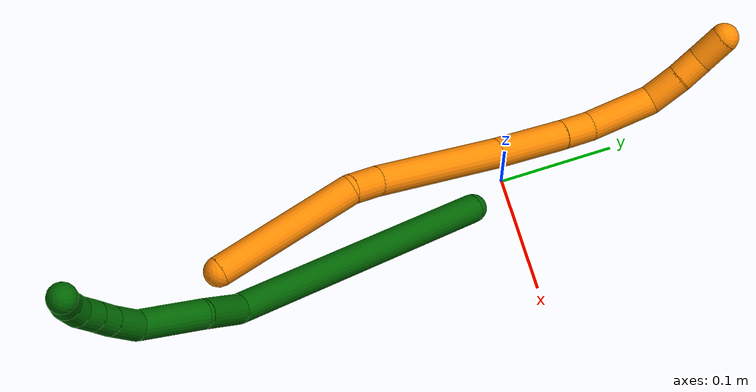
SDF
<sdf version="1.7">
 <world name="default">
  <model name="photoneo_s_sensor">
   <static>1</static>
   <pose>0 0 2 1.57079 1.57079 3.14159</pose>
   <link name="link">
    <inertial><mass>0.1</mass></inertial>
    <sensor name="sensor" type="depth">
     <update_rate>30</update_rate>
     <camera>
      <horizontal_fov>1.22</horizontal_fov>
      <image><width>1920</width><height>1200</height><format>B8G8R8</format></image>
      <clip><near>0.1</near><far>4</far></clip>
      <depth_camera><output>points</output></depth_camera>
     </camera>
     <plugin name="camera_plugin" filename="libgazebo_ros_depth_camera.so">
      <baseline>0.2</baseline>
      <alwaysOn>1</alwaysOn>
      <updateRate>0.0</updateRate>
      <cameraName>camera_ir</cameraName>
      <imageTopicName>/camera/color/image_raw</imageTopicName>
      <cameraInfoTopicName>/camera/color/camera_info</cameraInfoTopicName>
      <depthImageTopicName>/camera/depth/image_raw</depthImageTopicName>
      <depthImageCameraInfoTopicName>/camera/depth/camera_info</depthImageCameraInfoTopicName>
      <pointCloudTopicName>/camera/depth/points</pointCloudTopicName>
      <frameName>fr_optical</frameName>
      <pointCloudCutoff>0.1</pointCloudCutoff>
      <pointCloudCutoffMax>2.0</pointCloudCutoffMax>
      <distortionK1>0</distortionK1>
      <distortionK2>0</distortionK2>
      <distortionK3>0</distortionK3>
      <distortionT1>0</distortionT1>
      <distortionT2>0</distortionT2>
      <CxPrime>0</CxPrime>
      <Cx>0</Cx>
      <Cy>0</Cy>
      <focalLength>0</focalLength>
      <hackBaseline>0</hackBaseline>
     </plugin>
    </sensor>
   </link>
  </model>
  <model name="bin">
   <static>1</static>
   <link name="bottom">
    <collision name="collision-bottom">
     <pose>0 0 -0.01 0 -0 0</pose>
     <geometry><box><size>0.8 0.6 0.02</size></box></geometry>
     <surface>
      <friction><ode><mu>100</mu><mu2>100</mu2></ode></friction>
      <contact><collide_bitmask>65535</collide_bitmask></contact>
     </surface>
    </collision>
   </link>
   <link name="west_wall">
    <collision name="collision-west_wall">
     <pose>-0.41 0 0.1 0 -0 0</pose>
     <geometry><box><size>0.02 0.6 0.2</size></box></geometry>
     <surface>
      <friction><ode><mu>100</mu><mu2>100</mu2></ode></friction>
      <contact><collide_bitmask>65535</collide_bitmask></contact>
     </surface>
    </collision>
   </link>
   <link name="east_wall">
    <collision name="collision-east_wall">
     <pose>0.41 0 0.1 0 -0 0</pose>
     <geometry><box><size>0.02 0.6 0.2</size></box></geometry>
     <surface>
      <friction><ode><mu>100</mu><mu2>100</mu2></ode></friction>
      <contact><collide_bitmask>65535</collide_bitmask></contact>
     </surface>
    </collision>
   </link>
   <link name="south_wall">
    <collision name="collision-south_wall">
     <pose>0 -0.31 0.1 0 -0 0</pose>
     <geometry><box><size>0.8 0.02 0.2</size></box></geometry>
     <surface>
      <friction><ode><mu>100</mu><mu2>100</mu2></ode></friction>
      <contact><collide_bitmask>65535</collide_bitmask></contact>
     </surface>
    </collision>
   </link>
   <link name="north_wall">
    <collision name="collision-north_wall">
     <pose>0 0.31 0.1 0 -0 0</pose>
     <geometry><box><size>0.8 0.02 0.2</size></box></geometry>
     <surface>
      <friction><ode><mu>100</mu><mu2>100</mu2></ode></friction>
      <contact><collide_bitmask>65535</collide_bitmask></contact>
     </surface>
    </collision>
   </link>
  </model>
  <model name="6">
   <static>0</static>
   <link name="6">
    <collision name="collision-cylinder-e_1_1_4">
     <pose>-0.023797 -0.027512 0.131898 0.20564 -0.174815 -0.018084</pose>
     <geometry><cylinder><radius>0.0125</radius><length>0.273644</length></cylinder></geometry>
     <surface>
      <friction><ode><mu>1.16</mu><mu2>1.16</mu2><slip1>0</slip1><slip2>0</slip2></ode></friction>
      <contact><ode><kp>1e+06</kp><kd>1</kd><max_vel>0</max_vel><min_depth>0.001</min_depth></ode></contact>
     </surface>
    </collision>
    <visual name="visual-cylinder-e_1_1_4">
     <pose>-0.023797 -0.027512 0.131898 0.20564 -0.174815 -0.018084</pose>
     <geometry><cylinder><radius>0.0125</radius><length>0.273644</length></cylinder></geometry>
     <material><ambient>0 0.392157 0.003922 1</ambient></material>
    </visual>
    <collision name="collision-cylinder-e_2_4_5">
     <pose>-0.04418 -0.056019 0.287185 0.042499 0.144812 0.003083</pose>
     <geometry><cylinder><radius>0.0125</radius><length>0.047317</length></cylinder></geometry>
     <surface>
      <friction><ode><mu>1.16</mu><mu2>1.16</mu2><slip1>0</slip1><slip2>0</slip2></ode></friction>
      <contact><ode><kp>1e+06</kp><kd>1</kd><max_vel>0</max_vel><min_depth>0.001</min_depth></ode></contact>
     </surface>
    </collision>
    <visual name="visual-cylinder-e_2_4_5">
     <pose>-0.04418 -0.056019 0.287185 0.042499 0.144812 0.003083</pose>
     <geometry><cylinder><radius>0.0125</radius><length>0.047317</length></cylinder></geometry>
     <material><ambient>0 0.392157 0.003922 1</ambient></material>
    </visual>
    <collision name="collision-cylinder-e_3_5_6">
     <pose>-0.04748 -0.057151 0.341067 0.004486 -0.21675 -0.000488</pose>
     <geometry><cylinder><radius>0.0125</radius><length>0.062447</length></cylinder></geometry>
     <surface>
      <friction><ode><mu>1.16</mu><mu2>1.16</mu2><slip1>0</slip1><slip2>0</slip2></ode></friction>
      <contact><ode><kp>1e+06</kp><kd>1</kd><max_vel>0</max_vel><min_depth>0.001</min_depth></ode></contact>
     </surface>
    </collision>
    <visual name="visual-cylinder-e_3_5_6">
     <pose>-0.04748 -0.057151 0.341067 0.004486 -0.21675 -0.000488</pose>
     <geometry><cylinder><radius>0.0125</radius><length>0.062447</length></cylinder></geometry>
     <material><ambient>0 0.392157 0.003922 1</ambient></material>
    </visual>
    <collision name="collision-cylinder-e_4_6_7">
     <pose>-0.051197 -0.054818 0.387236 -0.156273 0.186713 -0.014661</pose>
     <geometry><cylinder><radius>0.0125</radius><length>0.0323</length></cylinder></geometry>
     <surface>
      <friction><ode><mu>1.16</mu><mu2>1.16</mu2><slip1>0</slip1><slip2>0</slip2></ode></friction>
      <contact><ode><kp>1e+06</kp><kd>1</kd><max_vel>0</max_vel><min_depth>0.001</min_depth></ode></contact>
     </surface>
    </collision>
    <visual name="visual-cylinder-e_4_6_7">
     <pose>-0.051197 -0.054818 0.387236 -0.156273 0.186713 -0.014661</pose>
     <geometry><cylinder><radius>0.0125</radius><length>0.0323</length></cylinder></geometry>
     <material><ambient>0 0.392157 0.003922 1</ambient></material>
    </visual>
    <collision name="collision-cylinder-e_5_7_8">
     <pose>-0.046022 -0.050206 0.412478 -0.220248 0.218502 -0.024255</pose>
     <geometry><cylinder><radius>0.0125</radius><length>0.020083</length></cylinder></geometry>
     <surface>
      <friction><ode><mu>1.16</mu><mu2>1.16</mu2><slip1>0</slip1><slip2>0</slip2></ode></friction>
      <contact><ode><kp>1e+06</kp><kd>1</kd><max_vel>0</max_vel><min_depth>0.001</min_depth></ode></contact>
     </surface>
    </collision>
    <visual name="visual-cylinder-e_5_7_8">
     <pose>-0.046022 -0.050206 0.412478 -0.220248 0.218502 -0.024255</pose>
     <geometry><cylinder><radius>0.0125</radius><length>0.020083</length></cylinder></geometry>
     <material><ambient>0 0.392157 0.003922 1</ambient></material>
    </visual>
    <collision name="collision-cylinder-e_6_8_9">
     <pose>-0.041217 -0.046174 0.43239 -0.180683 0.244892 -0.022295</pose>
     <geometry><cylinder><radius>0.0125</radius><length>0.021682</length></cylinder></geometry>
     <surface>
      <friction><ode><mu>1.16</mu><mu2>1.16</mu2><slip1>0</slip1><slip2>0</slip2></ode></friction>
      <contact><ode><kp>1e+06</kp><kd>1</kd><max_vel>0</max_vel><min_depth>0.001</min_depth></ode></contact>
     </surface>
    </collision>
    <visual name="visual-cylinder-e_6_8_9">
     <pose>-0.041217 -0.046174 0.43239 -0.180683 0.244892 -0.022295</pose>
     <geometry><cylinder><radius>0.0125</radius><length>0.021682</length></cylinder></geometry>
     <material><ambient>0 0.392157 0.003922 1</ambient></material>
    </visual>
    <collision name="collision-cylinder-e_7_9_10">
     <pose>-0.033988 -0.042121 0.451706 -0.236719 0.462598 -0.055998</pose>
     <geometry><cylinder><radius>0.0125</radius><length>0.02062</length></cylinder></geometry>
     <surface>
      <friction><ode><mu>1.16</mu><mu2>1.16</mu2><slip1>0</slip1><slip2>0</slip2></ode></friction>
      <contact><ode><kp>1e+06</kp><kd>1</kd><max_vel>0</max_vel><min_depth>0.001</min_depth></ode></contact>
     </surface>
    </collision>
    <visual name="visual-cylinder-e_7_9_10">
     <pose>-0.033988 -0.042121 0.451706 -0.236719 0.462598 -0.055998</pose>
     <geometry><cylinder><radius>0.0125</radius><length>0.02062</length></cylinder></geometry>
     <material><ambient>0 0.392157 0.003922 1</ambient></material>
    </visual>
    <collision name="collision-cylinder-e_8_10_2">
     <pose>-0.021921 -0.038986 0.468631 -0.121435 0.749864 -0.04784</pose>
     <geometry><cylinder><radius>0.0125</radius><length>0.021907</length></cylinder></geometry>
     <surface>
      <friction><ode><mu>1.16</mu><mu2>1.16</mu2><slip1>0</slip1><slip2>0</slip2></ode></friction>
      <contact><ode><kp>1e+06</kp><kd>1</kd><max_vel>0</max_vel><min_depth>0.001</min_depth></ode></contact>
     </surface>
    </collision>
    <visual name="visual-cylinder-e_8_10_2">
     <pose>-0.021921 -0.038986 0.468631 -0.121435 0.749864 -0.04784</pose>
     <geometry><cylinder><radius>0.0125</radius><length>0.021907</length></cylinder></geometry>
     <material><ambient>0 0.392157 0.003922 1</ambient></material>
    </visual>
    <collision name="collision-sphere-2">
     <pose>-0.014456 -0.038015 0.476588 0 -0 0</pose>
     <geometry><sphere><radius>0.0125</radius></sphere></geometry>
     <surface>
      <friction><ode><mu>1.16</mu><mu2>1.16</mu2><slip1>0</slip1><slip2>0</slip2></ode></friction>
      <contact><ode><kp>1e+06</kp><kd>1</kd><max_vel>0</max_vel><min_depth>0.001</min_depth></ode></contact>
     </surface>
    </collision>
    <visual name="visual-sphere-2">
     <pose>-0.014456 -0.038015 0.476588 0 -0 0</pose>
     <geometry><sphere><radius>0.0125</radius></sphere></geometry>
     <material><ambient>0 0.392157 0.003922 1</ambient></material>
    </visual>
    <collision name="collision-sphere-10">
     <pose>-0.029387 -0.039957 0.460675 0 -0 0</pose>
     <geometry><sphere><radius>0.0125</radius></sphere></geometry>
     <surface>
      <friction><ode><mu>1.16</mu><mu2>1.16</mu2><slip1>0</slip1><slip2>0</slip2></ode></friction>
      <contact><ode><kp>1e+06</kp><kd>1</kd><max_vel>0</max_vel><min_depth>0.001</min_depth></ode></contact>
     </surface>
    </collision>
    <visual name="visual-sphere-10">
     <pose>-0.029387 -0.039957 0.460675 0 -0 0</pose>
     <geometry><sphere><radius>0.0125</radius></sphere></geometry>
     <material><ambient>0 0.392157 0.003922 1</ambient></material>
    </visual>
    <collision name="collision-sphere-9">
     <pose>-0.038589 -0.044284 0.442736 0 -0 0</pose>
     <geometry><sphere><radius>0.0125</radius></sphere></geometry>
     <surface>
      <friction><ode><mu>1.16</mu><mu2>1.16</mu2><slip1>0</slip1><slip2>0</slip2></ode></friction>
      <contact><ode><kp>1e+06</kp><kd>1</kd><max_vel>0</max_vel><min_depth>0.001</min_depth></ode></contact>
     </surface>
    </collision>
    <visual name="visual-sphere-9">
     <pose>-0.038589 -0.044284 0.442736 0 -0 0</pose>
     <geometry><sphere><radius>0.0125</radius></sphere></geometry>
     <material><ambient>0 0.392157 0.003922 1</ambient></material>
    </visual>
    <collision name="collision-sphere-4">
     <pose>-0.047594 -0.055025 0.263795 0 -0 0</pose>
     <geometry><sphere><radius>0.0125</radius></sphere></geometry>
     <surface>
      <friction><ode><mu>1.16</mu><mu2>1.16</mu2><slip1>0</slip1><slip2>0</slip2></ode></friction>
      <contact><ode><kp>1e+06</kp><kd>1</kd><max_vel>0</max_vel><min_depth>0.001</min_depth></ode></contact>
     </surface>
    </collision>
    <visual name="visual-sphere-4">
     <pose>-0.047594 -0.055025 0.263795 0 -0 0</pose>
     <geometry><sphere><radius>0.0125</radius></sphere></geometry>
     <material><ambient>0 0.392157 0.003922 1</ambient></material>
    </visual>
    <collision name="collision-sphere-1">
     <geometry><sphere><radius>0.0125</radius></sphere></geometry>
     <surface>
      <friction><ode><mu>1.16</mu><mu2>1.16</mu2><slip1>0</slip1><slip2>0</slip2></ode></friction>
      <contact><ode><kp>1e+06</kp><kd>1</kd><max_vel>0</max_vel><min_depth>0.001</min_depth></ode></contact>
     </surface>
    </collision>
    <visual name="visual-sphere-1">
     <geometry><sphere><radius>0.0125</radius></sphere></geometry>
     <material><ambient>0 0.392157 0.003922 1</ambient></material>
    </visual>
    <collision name="collision-sphere-8">
     <pose>-0.043846 -0.048064 0.422044 0 -0 0</pose>
     <geometry><sphere><radius>0.0125</radius></sphere></geometry>
     <surface>
      <friction><ode><mu>1.16</mu><mu2>1.16</mu2><slip1>0</slip1><slip2>0</slip2></ode></friction>
      <contact><ode><kp>1e+06</kp><kd>1</kd><max_vel>0</max_vel><min_depth>0.001</min_depth></ode></contact>
     </surface>
    </collision>
    <visual name="visual-sphere-8">
     <pose>-0.043846 -0.048064 0.422044 0 -0 0</pose>
     <geometry><sphere><radius>0.0125</radius></sphere></geometry>
     <material><ambient>0 0.392157 0.003922 1</ambient></material>
    </visual>
    <collision name="collision-sphere-5">
     <pose>-0.040766 -0.057014 0.310575 0 -0 0</pose>
     <geometry><sphere><radius>0.0125</radius></sphere></geometry>
     <surface>
      <friction><ode><mu>1.16</mu><mu2>1.16</mu2><slip1>0</slip1><slip2>0</slip2></ode></friction>
      <contact><ode><kp>1e+06</kp><kd>1</kd><max_vel>0</max_vel><min_depth>0.001</min_depth></ode></contact>
     </surface>
    </collision>
    <visual name="visual-sphere-5">
     <pose>-0.040766 -0.057014 0.310575 0 -0 0</pose>
     <geometry><sphere><radius>0.0125</radius></sphere></geometry>
     <material><ambient>0 0.392157 0.003922 1</ambient></material>
    </visual>
    <collision name="collision-sphere-6">
     <pose>-0.054195 -0.057287 0.37156 0 -0 0</pose>
     <geometry><sphere><radius>0.0125</radius></sphere></geometry>
     <surface>
      <friction><ode><mu>1.16</mu><mu2>1.16</mu2><slip1>0</slip1><slip2>0</slip2></ode></friction>
      <contact><ode><kp>1e+06</kp><kd>1</kd><max_vel>0</max_vel><min_depth>0.001</min_depth></ode></contact>
     </surface>
    </collision>
    <visual name="visual-sphere-6">
     <pose>-0.054195 -0.057287 0.37156 0 -0 0</pose>
     <geometry><sphere><radius>0.0125</radius></sphere></geometry>
     <material><ambient>0 0.392157 0.003922 1</ambient></material>
    </visual>
    <collision name="collision-sphere-7">
     <pose>-0.048199 -0.052348 0.402912 0 -0 0</pose>
     <geometry><sphere><radius>0.0125</radius></sphere></geometry>
     <surface>
      <friction><ode><mu>1.16</mu><mu2>1.16</mu2><slip1>0</slip1><slip2>0</slip2></ode></friction>
      <contact><ode><kp>1e+06</kp><kd>1</kd><max_vel>0</max_vel><min_depth>0.001</min_depth></ode></contact>
     </surface>
    </collision>
    <visual name="visual-sphere-7">
     <pose>-0.048199 -0.052348 0.402912 0 -0 0</pose>
     <geometry><sphere><radius>0.0125</radius></sphere></geometry>
     <material><ambient>0 0.392157 0.003922 1</ambient></material>
    </visual>
    <inertial>
     <pose>-0.03244 -0.038502 0.241455 0 -0 0</pose>
     <mass>0.5</mass>
     <inertia>
      <ixx>0.001702</ixx>
      <ixy>0</ixy>
      <ixz>0</ixz>
      <iyy>0.001693</iyy>
      <iyz>0</iyz>
      <izz>0.00068</izz>
     </inertia>
    </inertial>
   </link>
   <pose>0.017794 -0.032705 0.011497 0.108474 -0.766071 1.44915</pose>
  </model>
  <model name="19">
   <static>0</static>
   <link name="19">
    <collision name="collision-cylinder-e_1_1_4">
     <pose>-0.016242 0.040586 -0.044938 -2.40704 -0.262067 0.660034</pose>
     <geometry><cylinder><radius>0.0125</radius><length>0.125387</length></cylinder></geometry>
     <surface>
      <friction><ode><mu>1.16</mu><mu2>1.16</mu2><slip1>0</slip1><slip2>0</slip2></ode></friction>
      <contact><ode><kp>1e+06</kp><kd>1</kd><max_vel>0</max_vel><min_depth>0.001</min_depth></ode></contact>
     </surface>
    </collision>
    <visual name="visual-cylinder-e_1_1_4">
     <pose>-0.016242 0.040586 -0.044938 -2.40704 -0.262067 0.660034</pose>
     <geometry><cylinder><radius>0.0125</radius><length>0.125387</length></cylinder></geometry>
     <material><ambient>0.996078 0.537255 0 1</ambient></material>
    </visual>
    <collision name="collision-cylinder-e_2_4_5">
     <pose>-0.033699 0.085999 -0.102372 -2.77299 -0.090383 0.475973</pose>
     <geometry><cylinder><radius>0.0125</radius><length>0.0269</length></cylinder></geometry>
     <surface>
      <friction><ode><mu>1.16</mu><mu2>1.16</mu2><slip1>0</slip1><slip2>0</slip2></ode></friction>
      <contact><ode><kp>1e+06</kp><kd>1</kd><max_vel>0</max_vel><min_depth>0.001</min_depth></ode></contact>
     </surface>
    </collision>
    <visual name="visual-cylinder-e_2_4_5">
     <pose>-0.033699 0.085999 -0.102372 -2.77299 -0.090383 0.475973</pose>
     <geometry><cylinder><radius>0.0125</radius><length>0.0269</length></cylinder></geometry>
     <material><ambient>0.996078 0.537255 0 1</ambient></material>
    </visual>
    <collision name="collision-cylinder-e_3_5_6">
     <pose>-0.035378 0.115486 -0.167732 -2.70512 -0.007964 0.035907</pose>
     <geometry><cylinder><radius>0.0125</radius><length>0.116673</length></cylinder></geometry>
     <surface>
      <friction><ode><mu>1.16</mu><mu2>1.16</mu2><slip1>0</slip1><slip2>0</slip2></ode></friction>
      <contact><ode><kp>1e+06</kp><kd>1</kd><max_vel>0</max_vel><min_depth>0.001</min_depth></ode></contact>
     </surface>
    </collision>
    <visual name="visual-cylinder-e_3_5_6">
     <pose>-0.035378 0.115486 -0.167732 -2.70512 -0.007964 0.035907</pose>
     <geometry><cylinder><radius>0.0125</radius><length>0.116673</length></cylinder></geometry>
     <material><ambient>0.996078 0.537255 0 1</ambient></material>
    </visual>
    <collision name="collision-cylinder-e_4_6_7">
     <pose>-0.036433 0.156561 -0.247542 -2.59442 -0.018714 0.066664</pose>
     <geometry><cylinder><radius>0.0125</radius><length>0.063112</length></cylinder></geometry>
     <surface>
      <friction><ode><mu>1.16</mu><mu2>1.16</mu2><slip1>0</slip1><slip2>0</slip2></ode></friction>
      <contact><ode><kp>1e+06</kp><kd>1</kd><max_vel>0</max_vel><min_depth>0.001</min_depth></ode></contact>
     </surface>
    </collision>
    <visual name="visual-cylinder-e_4_6_7">
     <pose>-0.036433 0.156561 -0.247542 -2.59442 -0.018714 0.066664</pose>
     <geometry><cylinder><radius>0.0125</radius><length>0.063112</length></cylinder></geometry>
     <material><ambient>0.996078 0.537255 0 1</ambient></material>
    </visual>
    <collision name="collision-cylinder-e_5_7_8">
     <pose>-0.037777 0.179748 -0.286289 -2.62067 -0.055327 0.206904</pose>
     <geometry><cylinder><radius>0.0125</radius><length>0.027257</length></cylinder></geometry>
     <surface>
      <friction><ode><mu>1.16</mu><mu2>1.16</mu2><slip1>0</slip1><slip2>0</slip2></ode></friction>
      <contact><ode><kp>1e+06</kp><kd>1</kd><max_vel>0</max_vel><min_depth>0.001</min_depth></ode></contact>
     </surface>
    </collision>
    <visual name="visual-cylinder-e_5_7_8">
     <pose>-0.037777 0.179748 -0.286289 -2.62067 -0.055327 0.206904</pose>
     <geometry><cylinder><radius>0.0125</radius><length>0.027257</length></cylinder></geometry>
     <material><ambient>0.996078 0.537255 0 1</ambient></material>
    </visual>
    <collision name="collision-cylinder-e_6_8_9">
     <pose>-0.041854 0.205985 -0.319803 -2.41072 -0.113482 0.294754</pose>
     <geometry><cylinder><radius>0.0125</radius><length>0.058697</length></cylinder></geometry>
     <surface>
      <friction><ode><mu>1.16</mu><mu2>1.16</mu2><slip1>0</slip1><slip2>0</slip2></ode></friction>
      <contact><ode><kp>1e+06</kp><kd>1</kd><max_vel>0</max_vel><min_depth>0.001</min_depth></ode></contact>
     </surface>
    </collision>
    <visual name="visual-cylinder-e_6_8_9">
     <pose>-0.041854 0.205985 -0.319803 -2.41072 -0.113482 0.294754</pose>
     <geometry><cylinder><radius>0.0125</radius><length>0.058697</length></cylinder></geometry>
     <material><ambient>0.996078 0.537255 0 1</ambient></material>
    </visual>
    <collision name="collision-cylinder-e_7_9_10">
     <pose>-0.049259 0.239472 -0.346967 -1.94162 -0.264926 0.384717</pose>
     <geometry><cylinder><radius>0.0125</radius><length>0.031176</length></cylinder></geometry>
     <surface>
      <friction><ode><mu>1.16</mu><mu2>1.16</mu2><slip1>0</slip1><slip2>0</slip2></ode></friction>
      <contact><ode><kp>1e+06</kp><kd>1</kd><max_vel>0</max_vel><min_depth>0.001</min_depth></ode></contact>
     </surface>
    </collision>
    <visual name="visual-cylinder-e_7_9_10">
     <pose>-0.049259 0.239472 -0.346967 -1.94162 -0.264926 0.384717</pose>
     <geometry><cylinder><radius>0.0125</radius><length>0.031176</length></cylinder></geometry>
     <material><ambient>0.996078 0.537255 0 1</ambient></material>
    </visual>
    <collision name="collision-cylinder-e_8_10_11">
     <pose>-0.057317 0.26326 -0.35671 -1.98481 -0.356843 0.539011</pose>
     <geometry><cylinder><radius>0.0125</radius><length>0.022771</length></cylinder></geometry>
     <surface>
      <friction><ode><mu>1.16</mu><mu2>1.16</mu2><slip1>0</slip1><slip2>0</slip2></ode></friction>
      <contact><ode><kp>1e+06</kp><kd>1</kd><max_vel>0</max_vel><min_depth>0.001</min_depth></ode></contact>
     </surface>
    </collision>
    <visual name="visual-cylinder-e_8_10_11">
     <pose>-0.057317 0.26326 -0.35671 -1.98481 -0.356843 0.539011</pose>
     <geometry><cylinder><radius>0.0125</radius><length>0.022771</length></cylinder></geometry>
     <material><ambient>0.996078 0.537255 0 1</ambient></material>
    </visual>
    <collision name="collision-cylinder-e_9_11_2">
     <pose>-0.065329 0.286305 -0.362954 -1.71678 -0.292012 0.337276</pose>
     <geometry><cylinder><radius>0.0125</radius><length>0.028028</length></cylinder></geometry>
     <surface>
      <friction><ode><mu>1.16</mu><mu2>1.16</mu2><slip1>0</slip1><slip2>0</slip2></ode></friction>
      <contact><ode><kp>1e+06</kp><kd>1</kd><max_vel>0</max_vel><min_depth>0.001</min_depth></ode></contact>
     </surface>
    </collision>
    <visual name="visual-cylinder-e_9_11_2">
     <pose>-0.065329 0.286305 -0.362954 -1.71678 -0.292012 0.337276</pose>
     <geometry><cylinder><radius>0.0125</radius><length>0.028028</length></cylinder></geometry>
     <material><ambient>0.996078 0.537255 0 1</ambient></material>
    </visual>
    <collision name="collision-sphere-2">
     <pose>-0.069363 0.299583 -0.364907 0 -0 0</pose>
     <geometry><sphere><radius>0.0125</radius></sphere></geometry>
     <surface>
      <friction><ode><mu>1.16</mu><mu2>1.16</mu2><slip1>0</slip1><slip2>0</slip2></ode></friction>
      <contact><ode><kp>1e+06</kp><kd>1</kd><max_vel>0</max_vel><min_depth>0.001</min_depth></ode></contact>
     </surface>
    </collision>
    <visual name="visual-sphere-2">
     <pose>-0.069363 0.299583 -0.364907 0 -0 0</pose>
     <geometry><sphere><radius>0.0125</radius></sphere></geometry>
     <material><ambient>0.996078 0.537255 0 1</ambient></material>
    </visual>
    <collision name="collision-sphere-11">
     <pose>-0.061295 0.273027 -0.361002 0 -0 0</pose>
     <geometry><sphere><radius>0.0125</radius></sphere></geometry>
     <surface>
      <friction><ode><mu>1.16</mu><mu2>1.16</mu2><slip1>0</slip1><slip2>0</slip2></ode></friction>
      <contact><ode><kp>1e+06</kp><kd>1</kd><max_vel>0</max_vel><min_depth>0.001</min_depth></ode></contact>
     </surface>
    </collision>
    <visual name="visual-sphere-11">
     <pose>-0.061295 0.273027 -0.361002 0 -0 0</pose>
     <geometry><sphere><radius>0.0125</radius></sphere></geometry>
     <material><ambient>0.996078 0.537255 0 1</ambient></material>
    </visual>
    <collision name="collision-sphere-10">
     <pose>-0.05334 0.253493 -0.352419 0 -0 0</pose>
     <geometry><sphere><radius>0.0125</radius></sphere></geometry>
     <surface>
      <friction><ode><mu>1.16</mu><mu2>1.16</mu2><slip1>0</slip1><slip2>0</slip2></ode></friction>
      <contact><ode><kp>1e+06</kp><kd>1</kd><max_vel>0</max_vel><min_depth>0.001</min_depth></ode></contact>
     </surface>
    </collision>
    <visual name="visual-sphere-10">
     <pose>-0.05334 0.253493 -0.352419 0 -0 0</pose>
     <geometry><sphere><radius>0.0125</radius></sphere></geometry>
     <material><ambient>0.996078 0.537255 0 1</ambient></material>
    </visual>
    <collision name="collision-sphere-9">
     <pose>-0.045177 0.22545 -0.341515 0 -0 0</pose>
     <geometry><sphere><radius>0.0125</radius></sphere></geometry>
     <surface>
      <friction><ode><mu>1.16</mu><mu2>1.16</mu2><slip1>0</slip1><slip2>0</slip2></ode></friction>
      <contact><ode><kp>1e+06</kp><kd>1</kd><max_vel>0</max_vel><min_depth>0.001</min_depth></ode></contact>
     </surface>
    </collision>
    <visual name="visual-sphere-9">
     <pose>-0.045177 0.22545 -0.341515 0 -0 0</pose>
     <geometry><sphere><radius>0.0125</radius></sphere></geometry>
     <material><ambient>0.996078 0.537255 0 1</ambient></material>
    </visual>
    <collision name="collision-sphere-4">
     <pose>-0.032485 0.081172 -0.089876 0 -0 0</pose>
     <geometry><sphere><radius>0.0125</radius></sphere></geometry>
     <surface>
      <friction><ode><mu>1.16</mu><mu2>1.16</mu2><slip1>0</slip1><slip2>0</slip2></ode></friction>
      <contact><ode><kp>1e+06</kp><kd>1</kd><max_vel>0</max_vel><min_depth>0.001</min_depth></ode></contact>
     </surface>
    </collision>
    <visual name="visual-sphere-4">
     <pose>-0.032485 0.081172 -0.089876 0 -0 0</pose>
     <geometry><sphere><radius>0.0125</radius></sphere></geometry>
     <material><ambient>0.996078 0.537255 0 1</ambient></material>
    </visual>
    <collision name="collision-sphere-1">
     <geometry><sphere><radius>0.0125</radius></sphere></geometry>
     <surface>
      <friction><ode><mu>1.16</mu><mu2>1.16</mu2><slip1>0</slip1><slip2>0</slip2></ode></friction>
      <contact><ode><kp>1e+06</kp><kd>1</kd><max_vel>0</max_vel><min_depth>0.001</min_depth></ode></contact>
     </surface>
    </collision>
    <visual name="visual-sphere-1">
     <geometry><sphere><radius>0.0125</radius></sphere></geometry>
     <material><ambient>0.996078 0.537255 0 1</ambient></material>
    </visual>
    <collision name="collision-sphere-8">
     <pose>-0.03853 0.186521 -0.298091 0 -0 0</pose>
     <geometry><sphere><radius>0.0125</radius></sphere></geometry>
     <surface>
      <friction><ode><mu>1.16</mu><mu2>1.16</mu2><slip1>0</slip1><slip2>0</slip2></ode></friction>
      <contact><ode><kp>1e+06</kp><kd>1</kd><max_vel>0</max_vel><min_depth>0.001</min_depth></ode></contact>
     </surface>
    </collision>
    <visual name="visual-sphere-8">
     <pose>-0.03853 0.186521 -0.298091 0 -0 0</pose>
     <geometry><sphere><radius>0.0125</radius></sphere></geometry>
     <material><ambient>0.996078 0.537255 0 1</ambient></material>
    </visual>
    <collision name="collision-sphere-5">
     <pose>-0.034913 0.090825 -0.114867 0 -0 0</pose>
     <geometry><sphere><radius>0.0125</radius></sphere></geometry>
     <surface>
      <friction><ode><mu>1.16</mu><mu2>1.16</mu2><slip1>0</slip1><slip2>0</slip2></ode></friction>
      <contact><ode><kp>1e+06</kp><kd>1</kd><max_vel>0</max_vel><min_depth>0.001</min_depth></ode></contact>
     </surface>
    </collision>
    <visual name="visual-sphere-5">
     <pose>-0.034913 0.090825 -0.114867 0 -0 0</pose>
     <geometry><sphere><radius>0.0125</radius></sphere></geometry>
     <material><ambient>0.996078 0.537255 0 1</ambient></material>
    </visual>
    <collision name="collision-sphere-6">
     <pose>-0.035842 0.140146 -0.220598 0 -0 0</pose>
     <geometry><sphere><radius>0.0125</radius></sphere></geometry>
     <surface>
      <friction><ode><mu>1.16</mu><mu2>1.16</mu2><slip1>0</slip1><slip2>0</slip2></ode></friction>
      <contact><ode><kp>1e+06</kp><kd>1</kd><max_vel>0</max_vel><min_depth>0.001</min_depth></ode></contact>
     </surface>
    </collision>
    <visual name="visual-sphere-6">
     <pose>-0.035842 0.140146 -0.220598 0 -0 0</pose>
     <geometry><sphere><radius>0.0125</radius></sphere></geometry>
     <material><ambient>0.996078 0.537255 0 1</ambient></material>
    </visual>
    <collision name="collision-sphere-7">
     <pose>-0.037023 0.172976 -0.274486 0 -0 0</pose>
     <geometry><sphere><radius>0.0125</radius></sphere></geometry>
     <surface>
      <friction><ode><mu>1.16</mu><mu2>1.16</mu2><slip1>0</slip1><slip2>0</slip2></ode></friction>
      <contact><ode><kp>1e+06</kp><kd>1</kd><max_vel>0</max_vel><min_depth>0.001</min_depth></ode></contact>
     </surface>
    </collision>
    <visual name="visual-sphere-7">
     <pose>-0.037023 0.172976 -0.274486 0 -0 0</pose>
     <geometry><sphere><radius>0.0125</radius></sphere></geometry>
     <material><ambient>0.996078 0.537255 0 1</ambient></material>
    </visual>
    <inertial>
     <pose>-0.035057 0.138465 -0.198537 0 -0 0</pose>
     <mass>0.5</mass>
     <inertia>
      <ixx>0.000432</ixx>
      <ixy>0</ixy>
      <ixz>0</ixz>
      <iyy>-0.000104</iyy>
      <iyz>0</iyz>
      <izz>-0.00018</izz>
     </inertia>
    </inertial>
   </link>
   <pose>0.058881 -0.259181 0.241885 0.666765 0.039335 0.026935</pose>
  </model>
 </world>
</sdf>
